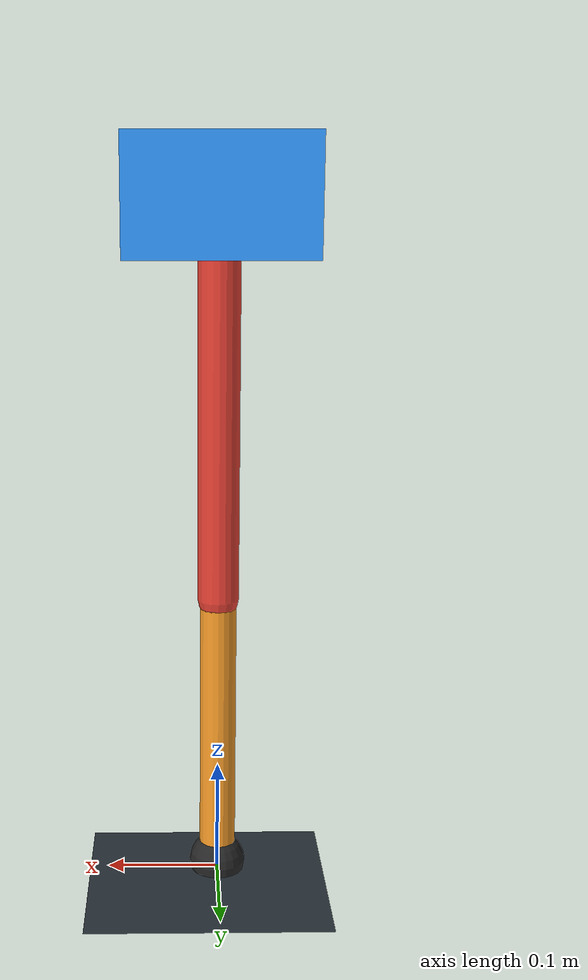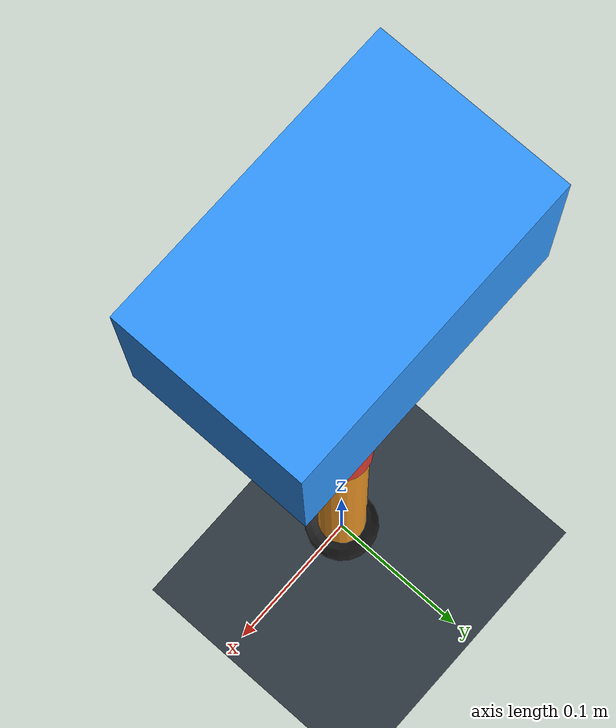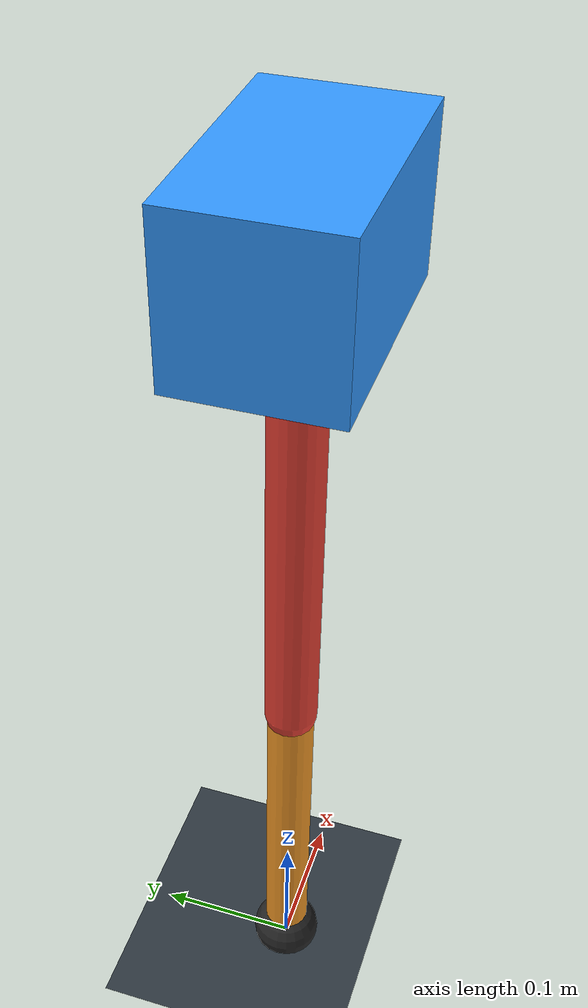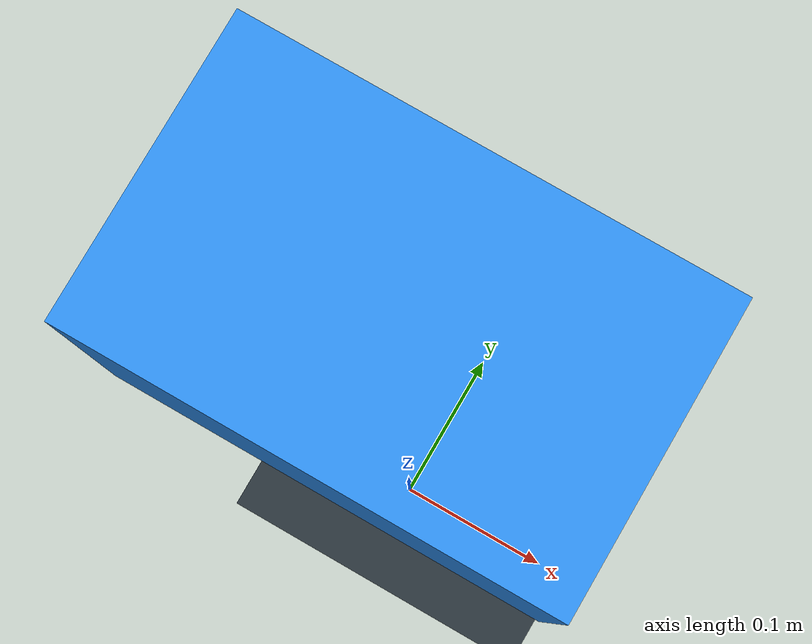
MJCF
<mujoco model="single_axis_two_bar">
  <compiler angle="radian" inertiafromgeom="true"/>
  <option timestep="0.001" integrator="implicitfast" gravity="0 0 -9.81"/>
  <default>
    <joint damping="0.08"/>
    <geom friction="1.2 0.01 0.0001" condim="3"/>
  </default>
  <worldbody>
    <geom name="floor" type="plane" size="5 5 0.1" rgba="0.18 0.22 0.25 1"/>
    <body name="carriage" pos="0 0 0.6018974034924877">
      <joint name="pole_slide" type="slide" axis="0 0 1"/>
      <geom name="payload" type="box" size="0.08 0.05 0.05" mass="2.626748049004371" rgba="0.2 0.6 1 1"/>
      <body name="thigh" pos="0 0 0">
        <joint name="hip" type="hinge" axis="0 1 0"/>
        <geom name="thigh_link" type="capsule" fromto="0 0 0 0 0 -0.3444868921411149" size="0.018" mass="0.24545146264320913" rgba="0.9 0.25 0.2 1"/>
        <body name="shank" pos="0 0 -0.3444868921411149">
          <joint name="knee" type="hinge" axis="0 1 0"/>
          <geom name="shank_link" type="capsule" fromto="0 0 0 0 0 -0.25025269908825376" size="0.016" mass="0.17830835489804592" rgba="0.95 0.6 0.15 1"/>
          <geom name="foot" type="sphere" pos="0 0 -0.25025269908825376" size="0.025" mass="0.03" rgba="0.15 0.15 0.15 1"/>
          <site name="toe" pos="0 0 -0.25025269908825376" size="0.008"/>
        </body>
      </body>
    </body>
  </worldbody>
  <actuator>
    <motor name="hip_motor" joint="hip" ctrlrange="-33.71752237312591 33.71752237312591"/>
    <motor name="knee_motor" joint="knee" ctrlrange="-105.82066857885296 105.82066857885296"/>
  </actuator>
</mujoco>
